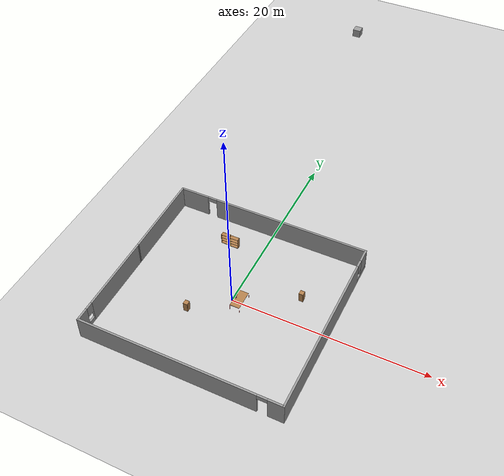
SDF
<sdf version="1.6">
 <world name="default">
  <light name="sun" type="directional">
   <pose>0 0 10 0 -0 0</pose>
   <diffuse>0.8 0.8 0.8 1</diffuse>
   <specular>0.2 0.2 0.2 1</specular>
   <attenuation>
    <range>1000</range>
    <constant>0.9</constant>
    <linear>0.01</linear>
    <quadratic>0.001</quadratic>
   </attenuation>
   <direction>-0.5 0.1 -0.9</direction>
  </light>
  <model name="ground_plane">
   <static>1</static>
   <link name="link">
    <collision name="collision">
     <geometry><plane><normal>0 0 1</normal><size>100 100</size></plane></geometry>
     <surface><friction><ode><mu>100</mu><mu2>50</mu2></ode></friction></surface>
    </collision>
    <visual name="visual">
     <cast_shadows>0</cast_shadows>
     <geometry><plane><normal>0 0 1</normal><size>100 100</size></plane></geometry>
     <material>
      <script><uri>file://media/materials/scripts/gazebo.material</uri><name>Gazebo/Grey</name></script>
     </material>
    </visual>
    <velocity_decay><linear>0</linear><angular>0</angular></velocity_decay>
   </link>
  </model>
  <physics name="default_physics" default="0" type="ode">
   <max_step_size>0.001</max_step_size>
   <real_time_factor>1</real_time_factor>
   <real_time_update_rate>1000</real_time_update_rate>
  </physics>
  <scene><ambient>0.4 0.4 0.4 1</ambient><background>0.7 0.7 0.7 1</background><shadows>1</shadows></scene>
  <spherical_coordinates>
   <surface_model>EARTH_WGS84</surface_model>
   <latitude_deg>0</latitude_deg>
   <longitude_deg>0</longitude_deg>
   <elevation>0</elevation>
   <heading_deg>0</heading_deg>
  </spherical_coordinates>
  <model name="BuildingDefaultNameXX1">
   <link name="Wall_10">
    <collision name="Wall_10_Collision">
     <geometry><box><size>9.16626 0.2 2.5</size></box></geometry>
     <pose>0 0 1.25 0 -0 0</pose>
    </collision>
    <visual name="Wall_10_Visual">
     <pose>0 0 1.25 0 -0 0</pose>
     <geometry><box><size>9.16626 0.2 2.5</size></box></geometry>
     <material>
      <script><uri>file://media/materials/scripts/gazebo.material</uri><name>Gazebo/Grey</name></script>
     </material>
    </visual>
    <velocity_decay><linear>0</linear><angular>0</angular></velocity_decay>
    <pose>-10.6432 4.8497 0 0 0 -1.56526</pose>
   </link>
   <link name="Wall_6">
    <pose>-10.6184 -4.64118 0 0 0 -1.5708</pose>
    <visual name="Wall_6_Visual_0">
     <pose>-1.08743 0 1.25 0 -0 0</pose>
     <geometry><box><size>8.04077 0.2 2.5</size></box></geometry>
     <material>
      <script><uri>file://media/materials/scripts/gazebo.material</uri><name>Gazebo/Grey</name></script>
     </material>
    </visual>
    <collision name="Wall_6_Collision_0">
     <geometry><box><size>8.04077 0.2 2.5</size></box></geometry>
     <pose>-1.08743 0 1.25 0 -0 0</pose>
    </collision>
    <visual name="Wall_6_Visual_1">
     <pose>4.02039 0 0.25 0 -0 0</pose>
     <geometry><box><size>2.17486 0.2 0.5</size></box></geometry>
     <material>
      <script><uri>file://media/materials/scripts/gazebo.material</uri><name>Gazebo/Grey</name></script>
     </material>
    </visual>
    <collision name="Wall_6_Collision_1">
     <geometry><box><size>2.17486 0.2 0.5</size></box></geometry>
     <pose>4.02039 0 0.25 0 -0 0</pose>
    </collision>
    <visual name="Wall_6_Visual_2">
     <pose>4.42038 0 1.5 0 -0 0</pose>
     <geometry><box><size>1.37486 0.2 2</size></box></geometry>
     <material>
      <script><uri>file://media/materials/scripts/gazebo.material</uri><name>Gazebo/Grey</name></script>
     </material>
    </visual>
    <collision name="Wall_6_Collision_2">
     <geometry><box><size>1.37486 0.2 2</size></box></geometry>
     <pose>4.42038 0 1.5 0 -0 0</pose>
    </collision>
    <visual name="Wall_6_Visual_3">
     <pose>3.33296 0 1.9 0 -0 0</pose>
     <geometry><box><size>0.8 0.2 1.2</size></box></geometry>
     <material>
      <script><uri>file://media/materials/scripts/gazebo.material</uri><name>Gazebo/Grey</name></script>
     </material>
    </visual>
    <collision name="Wall_6_Collision_3">
     <geometry><box><size>0.8 0.2 1.2</size></box></geometry>
     <pose>3.33296 0 1.9 0 -0 0</pose>
    </collision>
    <velocity_decay><linear>0</linear><angular>0</angular></velocity_decay>
   </link>
   <link name="Wall_7">
    <pose>-0.314916 -9.649 0 0 -0 0</pose>
    <visual name="Wall_7_Visual_0">
     <pose>-1.30026 0 1.25 0 -0 0</pose>
     <geometry><box><size>18.2064 0.2 2.5</size></box></geometry>
     <material>
      <script><uri>file://media/materials/scripts/gazebo.material</uri><name>Gazebo/Grey</name></script>
     </material>
    </visual>
    <collision name="Wall_7_Collision_0">
     <geometry><box><size>18.2064 0.2 2.5</size></box></geometry>
     <pose>-1.30026 0 1.25 0 -0 0</pose>
    </collision>
    <visual name="Wall_7_Visual_1">
     <pose>9.60322 0 1.25 0 -0 0</pose>
     <geometry><box><size>1.60053 0.2 2.5</size></box></geometry>
     <material>
      <script><uri>file://media/materials/scripts/gazebo.material</uri><name>Gazebo/Grey</name></script>
     </material>
    </visual>
    <collision name="Wall_7_Collision_1">
     <geometry><box><size>1.60053 0.2 2.5</size></box></geometry>
     <pose>9.60322 0 1.25 0 -0 0</pose>
    </collision>
    <visual name="Wall_7_Visual_2">
     <pose>8.30296 0 2.25 0 -0 0</pose>
     <geometry><box><size>1 0.2 0.5</size></box></geometry>
     <material>
      <script><uri>file://media/materials/scripts/gazebo.material</uri><name>Gazebo/Grey</name></script>
     </material>
    </visual>
    <collision name="Wall_7_Collision_2">
     <geometry><box><size>1 0.2 0.5</size></box></geometry>
     <pose>8.30296 0 2.25 0 -0 0</pose>
    </collision>
    <velocity_decay><linear>0</linear><angular>0</angular></velocity_decay>
   </link>
   <link name="Wall_8">
    <pose>9.98857 -0.15812 0 0 -0 1.5708</pose>
    <visual name="Wall_8_Visual_0">
     <pose>-1.13395 0 1.25 0 -0 0</pose>
     <geometry><box><size>16.9138 0.2 2.5</size></box></geometry>
     <material>
      <script><uri>file://media/materials/scripts/gazebo.material</uri><name>Gazebo/Grey</name></script>
     </material>
    </visual>
    <collision name="Wall_8_Collision_0">
     <geometry><box><size>16.9138 0.2 2.5</size></box></geometry>
     <pose>-1.13395 0 1.25 0 -0 0</pose>
    </collision>
    <visual name="Wall_8_Visual_1">
     <pose>8.45692 0 0.25 0 -0 0</pose>
     <geometry><box><size>2.26791 0.2 0.5</size></box></geometry>
     <material>
      <script><uri>file://media/materials/scripts/gazebo.material</uri><name>Gazebo/Grey</name></script>
     </material>
    </visual>
    <collision name="Wall_8_Collision_1">
     <geometry><box><size>2.26791 0.2 0.5</size></box></geometry>
     <pose>8.45692 0 0.25 0 -0 0</pose>
    </collision>
    <visual name="Wall_8_Visual_2">
     <pose>8.85692 0 1.5 0 -0 0</pose>
     <geometry><box><size>1.46791 0.2 2</size></box></geometry>
     <material>
      <script><uri>file://media/materials/scripts/gazebo.material</uri><name>Gazebo/Grey</name></script>
     </material>
    </visual>
    <collision name="Wall_8_Collision_2">
     <geometry><box><size>1.46791 0.2 2</size></box></geometry>
     <pose>8.85692 0 1.5 0 -0 0</pose>
    </collision>
    <visual name="Wall_8_Visual_3">
     <pose>7.72297 0 1.9 0 -0 0</pose>
     <geometry><box><size>0.8 0.2 1.2</size></box></geometry>
     <material>
      <script><uri>file://media/materials/scripts/gazebo.material</uri><name>Gazebo/Grey</name></script>
     </material>
    </visual>
    <collision name="Wall_8_Collision_3">
     <geometry><box><size>0.8 0.2 1.2</size></box></geometry>
     <pose>7.72297 0 1.9 0 -0 0</pose>
    </collision>
    <velocity_decay><linear>0</linear><angular>0</angular></velocity_decay>
   </link>
   <link name="Wall_9">
    <pose>-0.339737 9.33276 0 0 -0 3.14159</pose>
    <visual name="Wall_9_Visual_0">
     <pose>-2.09117 0 1.25 0 -0 0</pose>
     <geometry><box><size>16.6743 0.2 2.5</size></box></geometry>
     <material>
      <script><uri>file://media/materials/scripts/gazebo.material</uri><name>Gazebo/Grey</name></script>
     </material>
    </visual>
    <collision name="Wall_9_Collision_0">
     <geometry><box><size>16.6743 0.2 2.5</size></box></geometry>
     <pose>-2.09117 0 1.25 0 -0 0</pose>
    </collision>
    <visual name="Wall_9_Visual_1">
     <pose>8.83714 0 1.25 0 -0 0</pose>
     <geometry><box><size>3.18234 0.2 2.5</size></box></geometry>
     <material>
      <script><uri>file://media/materials/scripts/gazebo.material</uri><name>Gazebo/Grey</name></script>
     </material>
    </visual>
    <collision name="Wall_9_Collision_1">
     <geometry><box><size>3.18234 0.2 2.5</size></box></geometry>
     <pose>8.83714 0 1.25 0 -0 0</pose>
    </collision>
    <visual name="Wall_9_Visual_2">
     <pose>6.74597 0 2.25 0 -0 0</pose>
     <geometry><box><size>1 0.2 0.5</size></box></geometry>
     <material>
      <script><uri>file://media/materials/scripts/gazebo.material</uri><name>Gazebo/Grey</name></script>
     </material>
    </visual>
    <collision name="Wall_9_Collision_2">
     <geometry><box><size>1 0.2 0.5</size></box></geometry>
     <pose>6.74597 0 2.25 0 -0 0</pose>
    </collision>
    <velocity_decay><linear>0</linear><angular>0</angular></velocity_decay>
   </link>
   <static>1</static>
  </model>
  <model name="bookshelf">
   <static>1</static>
   <link name="link">
    <inertial><mass>1</mass></inertial>
    <collision name="back">
     <pose>0 0.005 0.6 0 -0 0</pose>
     <geometry><box><size>0.9 0.01 1.2</size></box></geometry>
    </collision>
    <visual name="visual1">
     <pose>0 0.005 0.6 0 -0 0</pose>
     <geometry><box><size>0.9 0.01 1.2</size></box></geometry>
     <material>
      <script><uri>file://media/materials/scripts/gazebo.material</uri><name>Gazebo/Wood</name></script>
     </material>
    </visual>
    <collision name="left_side">
     <pose>0.45 -0.195 0.6 0 -0 0</pose>
     <geometry><box><size>0.02 0.4 1.2</size></box></geometry>
    </collision>
    <visual name="visual2">
     <pose>0.45 -0.195 0.6 0 -0 0</pose>
     <geometry><box><size>0.02 0.4 1.2</size></box></geometry>
     <material>
      <script><uri>file://media/materials/scripts/gazebo.material</uri><name>Gazebo/Wood</name></script>
     </material>
    </visual>
    <collision name="right_side">
     <pose>-0.45 -0.195 0.6 0 -0 0</pose>
     <geometry><box><size>0.02 0.4 1.2</size></box></geometry>
    </collision>
    <visual name="visual3">
     <pose>-0.45 -0.195 0.6 0 -0 0</pose>
     <geometry><box><size>0.02 0.4 1.2</size></box></geometry>
     <material>
      <script><uri>file://media/materials/scripts/gazebo.material</uri><name>Gazebo/Wood</name></script>
     </material>
    </visual>
    <collision name="bottom">
     <pose>0 -0.195 0.03 0 -0 0</pose>
     <geometry><box><size>0.88 0.4 0.06</size></box></geometry>
    </collision>
    <visual name="visual4">
     <pose>0 -0.195 0.03 0 -0 0</pose>
     <geometry><box><size>0.88 0.4 0.06</size></box></geometry>
     <material>
      <script><uri>file://media/materials/scripts/gazebo.material</uri><name>Gazebo/Wood</name></script>
     </material>
    </visual>
    <collision name="top">
     <pose>0 -0.195 1.19 0 -0 0</pose>
     <geometry><box><size>0.88 0.4 0.02</size></box></geometry>
    </collision>
    <visual name="visual5">
     <pose>0 -0.195 1.19 0 -0 0</pose>
     <geometry><box><size>0.88 0.4 0.02</size></box></geometry>
     <material>
      <script><uri>file://media/materials/scripts/gazebo.material</uri><name>Gazebo/Wood</name></script>
     </material>
    </visual>
    <collision name="low_shelf">
     <pose>0 -0.195 0.43 0 -0 0</pose>
     <geometry><box><size>0.88 0.4 0.02</size></box></geometry>
    </collision>
    <visual name="visual6">
     <pose>0 -0.195 0.43 0 -0 0</pose>
     <geometry><box><size>0.88 0.4 0.02</size></box></geometry>
     <material>
      <script><uri>file://media/materials/scripts/gazebo.material</uri><name>Gazebo/Wood</name></script>
     </material>
    </visual>
    <collision name="high_shelf">
     <pose>0 -0.195 0.8 0 -0 0</pose>
     <geometry><box><size>0.88 0.4 0.02</size></box></geometry>
    </collision>
    <visual name="visual7">
     <pose>0 -0.195 0.8 0 -0 0</pose>
     <geometry><box><size>0.88 0.4 0.02</size></box></geometry>
     <material>
      <script><uri>file://media/materials/scripts/gazebo.material</uri><name>Gazebo/Wood</name></script>
     </material>
    </visual>
    <velocity_decay><linear>0</linear><angular>0</angular></velocity_decay>
   </link>
   <pose>-4 6.59644 0 0 -0 0</pose>
  </model>
  <model name="bookshelf_0">
   <static>1</static>
   <link name="link">
    <inertial><mass>1</mass></inertial>
    <collision name="back">
     <pose>0 0.005 0.6 0 -0 0</pose>
     <geometry><box><size>0.9 0.01 1.2</size></box></geometry>
    </collision>
    <visual name="visual1">
     <pose>0 0.005 0.6 0 -0 0</pose>
     <geometry><box><size>0.9 0.01 1.2</size></box></geometry>
     <material>
      <script><uri>file://media/materials/scripts/gazebo.material</uri><name>Gazebo/Wood</name></script>
     </material>
    </visual>
    <collision name="left_side">
     <pose>0.45 -0.195 0.6 0 -0 0</pose>
     <geometry><box><size>0.02 0.4 1.2</size></box></geometry>
    </collision>
    <visual name="visual2">
     <pose>0.45 -0.195 0.6 0 -0 0</pose>
     <geometry><box><size>0.02 0.4 1.2</size></box></geometry>
     <material>
      <script><uri>file://media/materials/scripts/gazebo.material</uri><name>Gazebo/Wood</name></script>
     </material>
    </visual>
    <collision name="right_side">
     <pose>-0.45 -0.195 0.6 0 -0 0</pose>
     <geometry><box><size>0.02 0.4 1.2</size></box></geometry>
    </collision>
    <visual name="visual3">
     <pose>-0.45 -0.195 0.6 0 -0 0</pose>
     <geometry><box><size>0.02 0.4 1.2</size></box></geometry>
     <material>
      <script><uri>file://media/materials/scripts/gazebo.material</uri><name>Gazebo/Wood</name></script>
     </material>
    </visual>
    <collision name="bottom">
     <pose>0 -0.195 0.03 0 -0 0</pose>
     <geometry><box><size>0.88 0.4 0.06</size></box></geometry>
    </collision>
    <visual name="visual4">
     <pose>0 -0.195 0.03 0 -0 0</pose>
     <geometry><box><size>0.88 0.4 0.06</size></box></geometry>
     <material>
      <script><uri>file://media/materials/scripts/gazebo.material</uri><name>Gazebo/Wood</name></script>
     </material>
    </visual>
    <collision name="top">
     <pose>0 -0.195 1.19 0 -0 0</pose>
     <geometry><box><size>0.88 0.4 0.02</size></box></geometry>
    </collision>
    <visual name="visual5">
     <pose>0 -0.195 1.19 0 -0 0</pose>
     <geometry><box><size>0.88 0.4 0.02</size></box></geometry>
     <material>
      <script><uri>file://media/materials/scripts/gazebo.material</uri><name>Gazebo/Wood</name></script>
     </material>
    </visual>
    <collision name="low_shelf">
     <pose>0 -0.195 0.43 0 -0 0</pose>
     <geometry><box><size>0.88 0.4 0.02</size></box></geometry>
    </collision>
    <visual name="visual6">
     <pose>0 -0.195 0.43 0 -0 0</pose>
     <geometry><box><size>0.88 0.4 0.02</size></box></geometry>
     <material>
      <script><uri>file://media/materials/scripts/gazebo.material</uri><name>Gazebo/Wood</name></script>
     </material>
    </visual>
    <collision name="high_shelf">
     <pose>0 -0.195 0.8 0 -0 0</pose>
     <geometry><box><size>0.88 0.4 0.02</size></box></geometry>
    </collision>
    <visual name="visual7">
     <pose>0 -0.195 0.8 0 -0 0</pose>
     <geometry><box><size>0.88 0.4 0.02</size></box></geometry>
     <material>
      <script><uri>file://media/materials/scripts/gazebo.material</uri><name>Gazebo/Wood</name></script>
     </material>
    </visual>
    <velocity_decay><linear>0</linear><angular>0</angular></velocity_decay>
   </link>
   <pose>-3 6.55849 0 0 -0 0</pose>
  </model>
  <model name="cabinet">
   <static>1</static>
   <link name="cabinet_bottom_plate">
    <inertial>
     <pose>0 0 -1 0 -0 0</pose>
     <inertia><ixx>2.05</ixx><ixy>0</ixy><ixz>0</ixz><iyy>2.05</iyy><iyz>0</iyz><izz>2.05</izz></inertia>
     <mass>25</mass>
    </inertial>
    <collision name="cabinet_bottom_plate_geom">
     <pose>0 0 0.01 0 -0 0</pose>
     <geometry><box><size>0.45 0.45 0.02</size></box></geometry>
    </collision>
    <visual name="cabinet_bottom_plate_geom_visual">
     <pose>0 0 0.01 0 -0 0</pose>
     <geometry><box><size>0.45 0.45 0.02</size></box></geometry>
     <material>
      <script><uri>file://media/materials/scripts/gazebo.material</uri><name>Gazebo/Wood</name></script>
     </material>
    </visual>
    <collision name="cabinet_bottom_plate_geom_cabinet_back_plate">
     <pose>0.235 0 0.51 0 -0 0</pose>
     <geometry><box><size>0.02 0.45 1.02</size></box></geometry>
    </collision>
    <visual name="cabinet_bottom_plate_geom_cabinet_back_plate_visual">
     <pose>0.235 0 0.51 0 -0 0</pose>
     <geometry><box><size>0.02 0.45 1.02</size></box></geometry>
     <material>
      <script><uri>file://media/materials/scripts/gazebo.material</uri><name>Gazebo/Wood</name></script>
     </material>
    </visual>
    <collision name="cabinet_bottom_plate_geom_cabinet_left_plate">
     <pose>0 0.235 0.51 0 -0 0</pose>
     <geometry><box><size>0.45 0.02 1.02</size></box></geometry>
    </collision>
    <visual name="cabinet_bottom_plate_geom_cabinet_left_plate_visual">
     <pose>0 0.235 0.51 0 -0 0</pose>
     <geometry><box><size>0.45 0.02 1.02</size></box></geometry>
     <material>
      <script><uri>file://media/materials/scripts/gazebo.material</uri><name>Gazebo/Wood</name></script>
     </material>
    </visual>
    <collision name="cabinet_bottom_plate_geom_cabinet_middle_plate">
     <pose>0 0 0.51 0 -0 0</pose>
     <geometry><box><size>0.45 0.45 0.02</size></box></geometry>
    </collision>
    <visual name="cabinet_bottom_plate_geom_cabinet_middle_plate_visual">
     <pose>0 0 0.51 0 -0 0</pose>
     <geometry><box><size>0.45 0.45 0.02</size></box></geometry>
     <material>
      <script><uri>file://media/materials/scripts/gazebo.material</uri><name>Gazebo/Wood</name></script>
     </material>
    </visual>
    <collision name="cabinet_bottom_plate_geom_cabinet_right_plate">
     <pose>0 -0.235 0.51 0 -0 0</pose>
     <geometry><box><size>0.45 0.02 1.02</size></box></geometry>
    </collision>
    <visual name="cabinet_bottom_plate_geom_cabinet_right_plate_visual">
     <pose>0 -0.235 0.51 0 -0 0</pose>
     <geometry><box><size>0.45 0.02 1.02</size></box></geometry>
     <material>
      <script><uri>file://media/materials/scripts/gazebo.material</uri><name>Gazebo/Wood</name></script>
     </material>
    </visual>
    <collision name="cabinet_bottom_plate_geom_cabinet_top_plate">
     <pose>0 0 1.01 0 -0 0</pose>
     <geometry><box><size>0.45 0.45 0.02</size></box></geometry>
    </collision>
    <visual name="cabinet_bottom_plate_geom_cabinet_top_plate_visual">
     <pose>0 0 1.01 0 -0 0</pose>
     <geometry><box><size>0.45 0.45 0.02</size></box></geometry>
     <material>
      <script><uri>file://media/materials/scripts/gazebo.material</uri><name>Gazebo/Wood</name></script>
     </material>
    </visual>
    <velocity_decay><linear>0</linear><angular>0</angular></velocity_decay>
   </link>
   <pose>6 3 0 0 -0 0</pose>
  </model>
  <model name="cabinet_0">
   <static>1</static>
   <link name="cabinet_bottom_plate">
    <inertial>
     <pose>0 0 -1 0 -0 0</pose>
     <inertia><ixx>2.05</ixx><ixy>0</ixy><ixz>0</ixz><iyy>2.05</iyy><iyz>0</iyz><izz>2.05</izz></inertia>
     <mass>25</mass>
    </inertial>
    <collision name="cabinet_bottom_plate_geom">
     <pose>0 0 0.01 0 -0 0</pose>
     <geometry><box><size>0.45 0.45 0.02</size></box></geometry>
    </collision>
    <visual name="cabinet_bottom_plate_geom_visual">
     <pose>0 0 0.01 0 -0 0</pose>
     <geometry><box><size>0.45 0.45 0.02</size></box></geometry>
     <material>
      <script><uri>file://media/materials/scripts/gazebo.material</uri><name>Gazebo/Wood</name></script>
     </material>
    </visual>
    <collision name="cabinet_bottom_plate_geom_cabinet_back_plate">
     <pose>0.235 0 0.51 0 -0 0</pose>
     <geometry><box><size>0.02 0.45 1.02</size></box></geometry>
    </collision>
    <visual name="cabinet_bottom_plate_geom_cabinet_back_plate_visual">
     <pose>0.235 0 0.51 0 -0 0</pose>
     <geometry><box><size>0.02 0.45 1.02</size></box></geometry>
     <material>
      <script><uri>file://media/materials/scripts/gazebo.material</uri><name>Gazebo/Wood</name></script>
     </material>
    </visual>
    <collision name="cabinet_bottom_plate_geom_cabinet_left_plate">
     <pose>0 0.235 0.51 0 -0 0</pose>
     <geometry><box><size>0.45 0.02 1.02</size></box></geometry>
    </collision>
    <visual name="cabinet_bottom_plate_geom_cabinet_left_plate_visual">
     <pose>0 0.235 0.51 0 -0 0</pose>
     <geometry><box><size>0.45 0.02 1.02</size></box></geometry>
     <material>
      <script><uri>file://media/materials/scripts/gazebo.material</uri><name>Gazebo/Wood</name></script>
     </material>
    </visual>
    <collision name="cabinet_bottom_plate_geom_cabinet_middle_plate">
     <pose>0 0 0.51 0 -0 0</pose>
     <geometry><box><size>0.45 0.45 0.02</size></box></geometry>
    </collision>
    <visual name="cabinet_bottom_plate_geom_cabinet_middle_plate_visual">
     <pose>0 0 0.51 0 -0 0</pose>
     <geometry><box><size>0.45 0.45 0.02</size></box></geometry>
     <material>
      <script><uri>file://media/materials/scripts/gazebo.material</uri><name>Gazebo/Wood</name></script>
     </material>
    </visual>
    <collision name="cabinet_bottom_plate_geom_cabinet_right_plate">
     <pose>0 -0.235 0.51 0 -0 0</pose>
     <geometry><box><size>0.45 0.02 1.02</size></box></geometry>
    </collision>
    <visual name="cabinet_bottom_plate_geom_cabinet_right_plate_visual">
     <pose>0 -0.235 0.51 0 -0 0</pose>
     <geometry><box><size>0.45 0.02 1.02</size></box></geometry>
     <material>
      <script><uri>file://media/materials/scripts/gazebo.material</uri><name>Gazebo/Wood</name></script>
     </material>
    </visual>
    <collision name="cabinet_bottom_plate_geom_cabinet_top_plate">
     <pose>0 0 1.01 0 -0 0</pose>
     <geometry><box><size>0.45 0.45 0.02</size></box></geometry>
    </collision>
    <visual name="cabinet_bottom_plate_geom_cabinet_top_plate_visual">
     <pose>0 0 1.01 0 -0 0</pose>
     <geometry><box><size>0.45 0.45 0.02</size></box></geometry>
     <material>
      <script><uri>file://media/materials/scripts/gazebo.material</uri><name>Gazebo/Wood</name></script>
     </material>
    </visual>
    <velocity_decay><linear>0</linear><angular>0</angular></velocity_decay>
   </link>
   <pose>-3.39916 -2.77358 0 0 -0 0</pose>
  </model>
  <gravity>0 0 -9.8</gravity>
  <magnetic_field>6e-06 2.3e-05 -4.2e-05</magnetic_field>
  <atmosphere type="adiabatic"/>
  <model name="unit_box_0">
   <pose>-5.84348 48.4169 0.499995 -1e-05 0 0</pose>
   <link name="link">
    <inertial>
     <mass>1</mass>
     <inertia>
      <ixx>0.166667</ixx>
      <ixy>0</ixy>
      <ixz>0</ixz>
      <iyy>0.166667</iyy>
      <iyz>0</iyz>
      <izz>0.166667</izz>
     </inertia>
    </inertial>
    <collision name="collision"><geometry><box><size>1 1 1</size></box></geometry></collision>
    <visual name="visual">
     <geometry><box><size>1 1 1</size></box></geometry>
     <material>
      <script><name>Gazebo/Grey</name><uri>file://media/materials/scripts/gazebo.material</uri></script>
     </material>
    </visual>
   </link>
  </model>
  <model name="unit_box_1_0_0">
   <link name="link">
    <inertial>
     <mass>0.1</mass>
     <inertia>
      <ixx>0.166667</ixx>
      <ixy>0</ixy>
      <ixz>0</ixz>
      <iyy>0.166667</iyy>
      <iyz>0</iyz>
      <izz>0.166667</izz>
     </inertia>
    </inertial>
    <visual name="visual">
     <geometry><box><size>0.15 0.4 0.04</size></box></geometry>
     <material>
      <script><name>Gazebo/Wood</name><uri>file://media/materials/scripts/gazebo.material</uri></script>
      <ambient>0.3 0.3 0.3 1</ambient>
      <diffuse>0.7 0.7 0.7 1</diffuse>
      <specular>0.01 0.01 0.01 1</specular>
      <emissive>0 0 0 1</emissive>
      <shader type="vertex"><normal_map>__default__</normal_map></shader>
     </material>
    </visual>
    <collision name="collision">
     <geometry><box><size>0.15 0.4 0.04</size></box></geometry>
     <surface>
      <friction>
       <ode><mu>1</mu><mu2>1</mu2><fdir1>0 0 0</fdir1><slip1>0</slip1><slip2>0</slip2></ode>
       <torsional>
        <coefficient>1</coefficient>
        <patch_radius>0</patch_radius>
        <surface_radius>0</surface_radius>
        <use_patch_radius>1</use_patch_radius>
        <ode><slip>0</slip></ode>
       </torsional>
      </friction>
      <bounce><restitution_coefficient>0</restitution_coefficient><threshold>1e+06</threshold></bounce>
      <contact>
       <collide_without_contact>0</collide_without_contact>
       <collide_without_contact_bitmask>1</collide_without_contact_bitmask>
       <collide_bitmask>1</collide_bitmask>
       <ode>
        <soft_cfm>0</soft_cfm>
        <soft_erp>0.2</soft_erp>
        <kp>1e+13</kp>
        <kd>1</kd>
        <max_vel>0.01</max_vel>
        <min_depth>0</min_depth>
       </ode>
       <bullet>
        <split_impulse>1</split_impulse>
        <split_impulse_penetration_threshold>-0.01</split_impulse_penetration_threshold>
        <soft_cfm>0</soft_cfm>
        <soft_erp>0.2</soft_erp>
        <kp>1e+13</kp>
        <kd>1</kd>
       </bullet>
      </contact>
     </surface>
    </collision>
   </link>
   <static>0</static>
   <pose>0.453337 0.000142 0.959922 1.4e-05 2.2e-05 0.000433</pose>
  </model>
  <model name="table_model">
   <link name="table_top_link">
    <inertial>
     <pose>0.8 0 0.373 0 -0 0</pose>
     <mass>50</mass>
     <inertia>
      <ixx>42.0728</ixx>
      <ixy>0</ixy>
      <ixz>-1.77636e-15</ixz>
      <iyy>12.0728</iyy>
      <iyz>0</iyz>
      <izz>51.04</izz>
     </inertia>
    </inertial>
    <collision name="table_top_link_collision">
     <pose>0.8 0 0.605 0 -0 0</pose>
     <geometry><box><size>1 2 0.05</size></box></geometry>
     <surface>
      <contact><ode><kp>1e+06</kp><kd>1</kd></ode></contact>
      <friction><ode><mu>50</mu><mu2>50</mu2></ode></friction>
     </surface>
    </collision>
    <collision name="table_top_link_fixed_joint_lump__leg1_link_collision_1">
     <pose>1.3 1 0.315 0 -0 0</pose>
     <geometry><cylinder><length>0.63</length><radius>0.02</radius></cylinder></geometry>
     <surface>
      <contact><ode><kp>1e+07</kp><kd>1</kd></ode></contact>
      <friction><ode><mu>1000</mu><mu2>1000</mu2></ode></friction>
     </surface>
    </collision>
    <collision name="table_top_link_fixed_joint_lump__leg2_link_collision_2">
     <pose>0.3 1 0.315 0 -0 0</pose>
     <geometry><cylinder><length>0.63</length><radius>0.02</radius></cylinder></geometry>
     <surface>
      <contact><ode><kp>1e+07</kp><kd>1</kd></ode></contact>
      <friction><ode><mu>1000</mu><mu2>1000</mu2></ode></friction>
     </surface>
    </collision>
    <collision name="table_top_link_fixed_joint_lump__leg3_link_collision_3">
     <pose>1.3 -1 0.315 0 -0 0</pose>
     <geometry><cylinder><length>0.63</length><radius>0.02</radius></cylinder></geometry>
     <surface>
      <contact><ode><kp>1e+07</kp><kd>1</kd></ode></contact>
      <friction><ode><mu>1000</mu><mu2>1000</mu2></ode></friction>
     </surface>
    </collision>
    <collision name="table_top_link_fixed_joint_lump__leg4_link_collision_4">
     <pose>0.3 -1 0.315 0 -0 0</pose>
     <geometry><cylinder><length>0.63</length><radius>0.02</radius></cylinder></geometry>
     <surface>
      <contact><ode><kp>1e+07</kp><kd>1</kd></ode></contact>
      <friction><ode><mu>1000</mu><mu2>1000</mu2></ode></friction>
     </surface>
    </collision>
    <visual name="table_top_link_visual">
     <pose>0.8 0 0.605 0 -0 0</pose>
     <geometry><box><size>1 2 0.05</size></box></geometry>
     <material>
      <script><name>Gazebo/Wood</name><uri>file://media/materials/scripts/gazebo.material</uri></script>
     </material>
    </visual>
    <visual name="table_top_link_fixed_joint_lump__leg1_link_visual_1">
     <pose>1.3 1 0.315 0 -0 0</pose>
     <geometry><cylinder><length>0.63</length><radius>0.02</radius></cylinder></geometry>
     <material>
      <script><name>Gazebo/Red</name><uri>file://media/materials/scripts/gazebo.material</uri></script>
     </material>
    </visual>
    <visual name="table_top_link_fixed_joint_lump__leg2_link_visual_2">
     <pose>0.3 1 0.315 0 -0 0</pose>
     <geometry><cylinder><length>0.63</length><radius>0.02</radius></cylinder></geometry>
     <material>
      <script><name>Gazebo/Red</name><uri>file://media/materials/scripts/gazebo.material</uri></script>
     </material>
    </visual>
    <visual name="table_top_link_fixed_joint_lump__leg3_link_visual_3">
     <pose>1.3 -1 0.315 0 -0 0</pose>
     <geometry><cylinder><length>0.63</length><radius>0.02</radius></cylinder></geometry>
     <material>
      <script><name>Gazebo/Red</name><uri>file://media/materials/scripts/gazebo.material</uri></script>
     </material>
    </visual>
    <visual name="table_top_link_fixed_joint_lump__leg4_link_visual_4">
     <pose>0.3 -1 0.315 0 -0 0</pose>
     <geometry><cylinder><length>0.63</length><radius>0.02</radius></cylinder></geometry>
     <material>
      <script><name>Gazebo/Red</name><uri>file://media/materials/scripts/gazebo.material</uri></script>
     </material>
    </visual>
    <self_collide>1</self_collide>
   </link>
   <static>1</static>
   <pose>0 0 0.01 0 -0 0</pose>
  </model>
  <model name="Untitled_0_0">
   <link name="link_2">
    <inertial>
     <mass>1</mass>
     <inertia>
      <ixx>0.166667</ixx>
      <ixy>0</ixy>
      <ixz>0</ixz>
      <iyy>0.166667</iyy>
      <iyz>0</iyz>
      <izz>0.166667</izz>
     </inertia>
    </inertial>
    <visual name="visual">
     <geometry><box><size>0.1 0.1 0.3</size></box></geometry>
     <material>
      <lighting>1</lighting>
      <script><uri>file://media/materials/scripts/gazebo.material</uri><name>Gazebo/Grey</name></script>
      <ambient>0.3 0.3 0.3 1</ambient>
      <diffuse>0.7 0.7 0.7 1</diffuse>
      <specular>0.01 0.01 0.01 1</specular>
      <emissive>0 0 0 1</emissive>
      <shader type="vertex"><normal_map>__default__</normal_map></shader>
     </material>
    </visual>
    <collision name="collision">
     <geometry><box><size>0.1 0.1 0.3</size></box></geometry>
     <surface>
      <friction>
       <ode><mu>1</mu><mu2>1</mu2><fdir1>0 0 0</fdir1><slip1>0</slip1><slip2>0</slip2></ode>
       <torsional>
        <coefficient>1</coefficient>
        <patch_radius>0</patch_radius>
        <surface_radius>0</surface_radius>
        <use_patch_radius>1</use_patch_radius>
        <ode><slip>0</slip></ode>
       </torsional>
      </friction>
      <bounce><restitution_coefficient>0</restitution_coefficient><threshold>1e+06</threshold></bounce>
      <contact>
       <collide_without_contact>0</collide_without_contact>
       <collide_without_contact_bitmask>1</collide_without_contact_bitmask>
       <collide_bitmask>1</collide_bitmask>
       <ode>
        <soft_cfm>0</soft_cfm>
        <soft_erp>0.2</soft_erp>
        <kp>1e+13</kp>
        <kd>1</kd>
        <max_vel>0.01</max_vel>
        <min_depth>0</min_depth>
       </ode>
       <bullet>
        <split_impulse>1</split_impulse>
        <split_impulse_penetration_threshold>-0.01</split_impulse_penetration_threshold>
        <soft_cfm>0</soft_cfm>
        <soft_erp>0.2</soft_erp>
        <kp>1e+13</kp>
        <kd>1</kd>
       </bullet>
      </contact>
     </surface>
    </collision>
   </link>
   <static>0</static>
   <pose>0.451728 3.5e-05 0.789933 1e-05 2e-05 -1.3e-05</pose>
  </model>
 </world>
</sdf>
